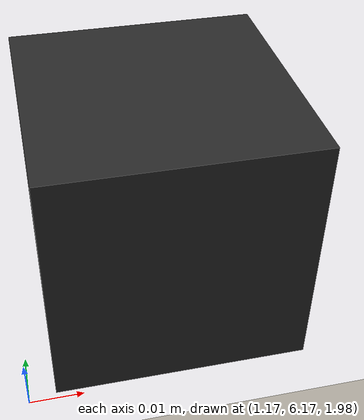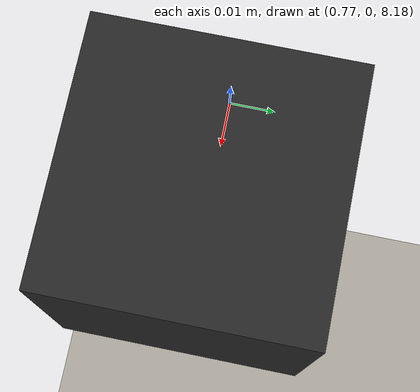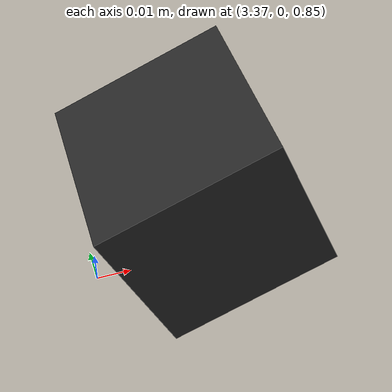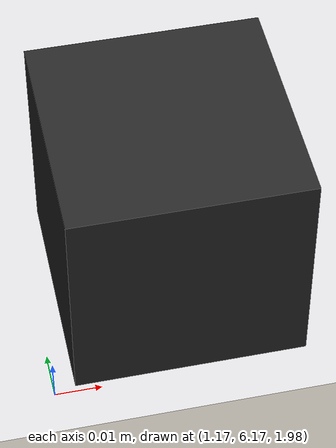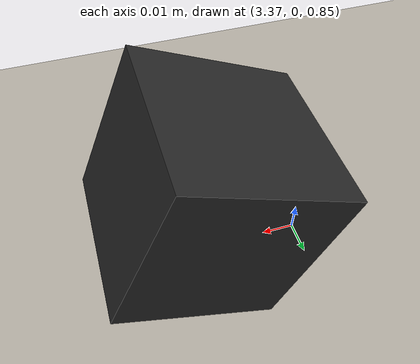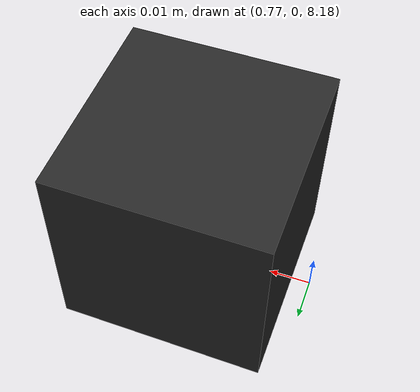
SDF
<?xml version="1.0" ?>
<sdf version="1.8">
  <world name="cyclus_showcase_world">
    <gravity>0 0 -9.8</gravity>
    <magnetic_field>6e-06 2.3e-05 -4.2e-05</magnetic_field>
    <atmosphere type="adiabatic" />

    <physics name="controller_matched_step" type="ignored">
      <max_step_size>0.01</max_step_size>
      <real_time_factor>1.0</real_time_factor>
      <real_time_update_rate>100</real_time_update_rate>
    </physics>

    <plugin filename="gz-sim-physics-system" name="gz::sim::systems::Physics" />
    <plugin filename="gz-sim-user-commands-system" name="gz::sim::systems::UserCommands" />
    <plugin filename="gz-sim-scene-broadcaster-system" name="gz::sim::systems::SceneBroadcaster" />
    <plugin filename="gz-sim-sensors-system" name="gz::sim::systems::Sensors">
      <render_engine>ogre2</render_engine>
    </plugin>

    <scene>
      <ambient>0.28 0.30 0.33 1.0</ambient>
      <background>0.68 0.75 0.84 1.0</background>
      <shadows>true</shadows>
      <grid>false</grid>
      <origin_visual>false</origin_visual>
    </scene>

    <light name="sun_main" type="directional">
      <cast_shadows>true</cast_shadows>
      <pose>0 0 40 0 0 0</pose>
      <diffuse>0.88 0.84 0.76 1.0</diffuse>
      <specular>0.18 0.17 0.15 1.0</specular>
      <attenuation>
        <range>2000</range>
        <constant>0.9</constant>
        <linear>0.001</linear>
        <quadratic>0.00002</quadratic>
      </attenuation>
      <direction>-0.40 0.24 -0.88</direction>
    </light>

    <light name="sun_fill" type="directional">
      <cast_shadows>false</cast_shadows>
      <pose>0 0 28 0 0 0</pose>
      <diffuse>0.10 0.13 0.18 1.0</diffuse>
      <specular>0.02 0.02 0.03 1.0</specular>
      <attenuation>
        <range>1200</range>
        <constant>1.0</constant>
        <linear>0.001</linear>
        <quadratic>0.00005</quadratic>
      </attenuation>
      <direction>0.55 -0.20 -0.81</direction>
    </light>

    <model name="showcase_ground">
      <static>true</static>
      <link name="ground_link">
        <collision name="ground_collision">
          <pose>0 0 -0.075 0 0 0</pose>
          <geometry>
            <box>
              <size>240 240 0.15</size>
            </box>
          </geometry>
          <surface>
            <friction>
              <ode>
                <mu>1.2</mu>
                <mu2>1.2</mu2>
              </ode>
            </friction>
          </surface>
        </collision>
        <visual name="ground_visual">
          <pose>0 0 -0.076 0 0 0</pose>
          <geometry>
            <box>
              <size>240 240 0.12</size>
            </box>
          </geometry>
          <material>
            <ambient>0.52 0.51 0.48 1.0</ambient>
            <diffuse>0.66 0.64 0.60 1.0</diffuse>
            <specular>0.04 0.04 0.04 1.0</specular>
            <pbr>
              <metal>
                <albedo_map>../materials/textures/showcase_ground_albedo.png</albedo_map>                <roughness>0.95</roughness>
                <metalness>0.0</metalness>
              </metal>
            </pbr>
          </material>
        </visual>
      </link>
    </model>

    <!-- Fixed operator cameras. These are static world sensors and do not
         participate in robot physics or controller behavior. -->
    <model name="camera_top">
      <static>true</static>
      <pose>0.8 0 8.2 0 1.5708 0</pose>
      <link name="link">
        <visual name="vis_body">
          <geometry>
            <box>
              <size>0.05 0.05 0.05</size>
            </box>
          </geometry>
          <material>
            <ambient>0.10 0.10 0.10 1</ambient>
            <diffuse>0.15 0.15 0.15 1</diffuse>
          </material>
        </visual>
        <sensor name="camera_top" type="camera">
          <update_rate>15</update_rate>
          <topic>camera_top/image</topic>
          <camera>
            <horizontal_fov>1.2</horizontal_fov>
            <image>
              <width>480</width>
              <height>360</height>
              <format>R8G8B8</format>
            </image>
            <clip>
              <near>0.05</near>
              <far>20.0</far>
            </clip>
          </camera>
          <always_on>1</always_on>
          <visualize>true</visualize>
        </sensor>
      </link>
    </model>

    <model name="camera_side">
      <static>true</static>
      <pose>1.2 6.2 2 0 0 -1.5708</pose>
      <link name="link">
        <visual name="vis_body">
          <geometry>
            <box>
              <size>0.05 0.05 0.05</size>
            </box>
          </geometry>
          <material>
            <ambient>0.10 0.10 0.10 1</ambient>
            <diffuse>0.15 0.15 0.15 1</diffuse>
          </material>
        </visual>
        <sensor name="camera_side" type="camera">
          <update_rate>15</update_rate>
          <topic>camera_side/image</topic>
          <camera>
            <horizontal_fov>1.2</horizontal_fov>
            <image>
              <width>480</width>
              <height>360</height>
              <format>R8G8B8</format>
            </image>
            <clip>
              <near>0.05</near>
              <far>20.0</far>
            </clip>
          </camera>
          <always_on>1</always_on>
          <visualize>true</visualize>
        </sensor>
      </link>
    </model>

    <model name="camera_front">
      <static>true</static>
      <pose>3.4 0 0.88 0 0.4 3.14159</pose>
      <link name="link">
        <visual name="vis_body">
          <geometry>
            <box>
              <size>0.05 0.05 0.05</size>
            </box>
          </geometry>
          <material>
            <ambient>0.10 0.10 0.10 1</ambient>
            <diffuse>0.15 0.15 0.15 1</diffuse>
          </material>
        </visual>
        <sensor name="camera_front" type="camera">
          <update_rate>15</update_rate>
          <topic>camera_front/image</topic>
          <camera>
            <horizontal_fov>1.2</horizontal_fov>
            <image>
              <width>480</width>
              <height>360</height>
              <format>R8G8B8</format>
            </image>
            <clip>
              <near>0.05</near>
              <far>20.0</far>
            </clip>
          </camera>
          <always_on>1</always_on>
          <visualize>true</visualize>
        </sensor>
      </link>
    </model>
  </world>
</sdf>
